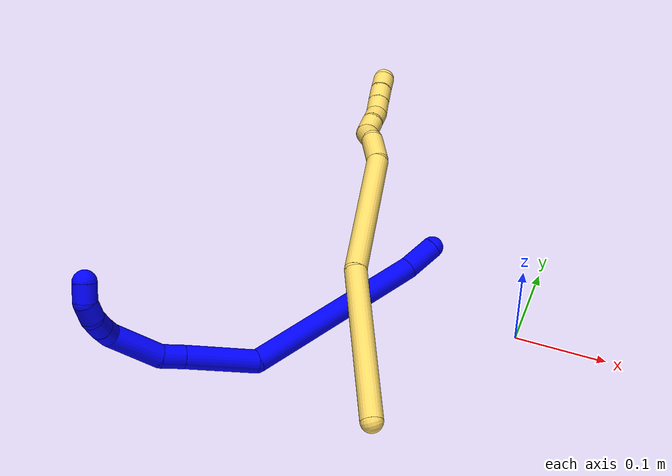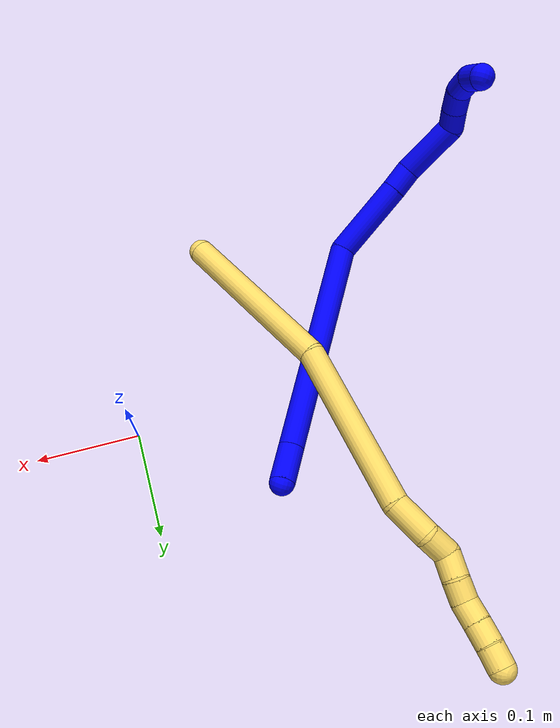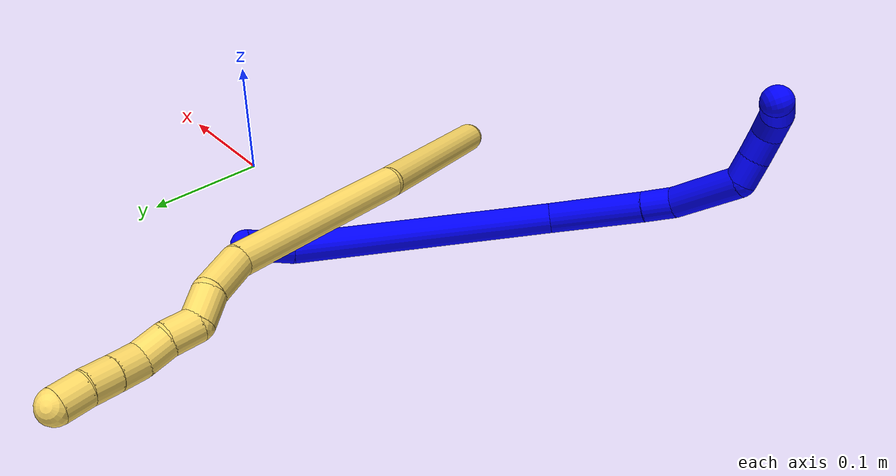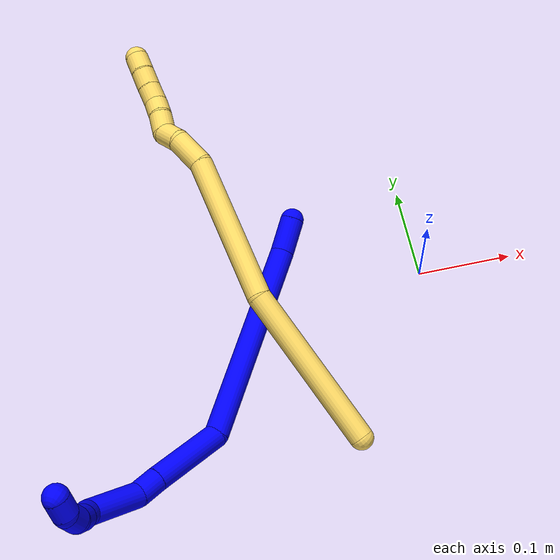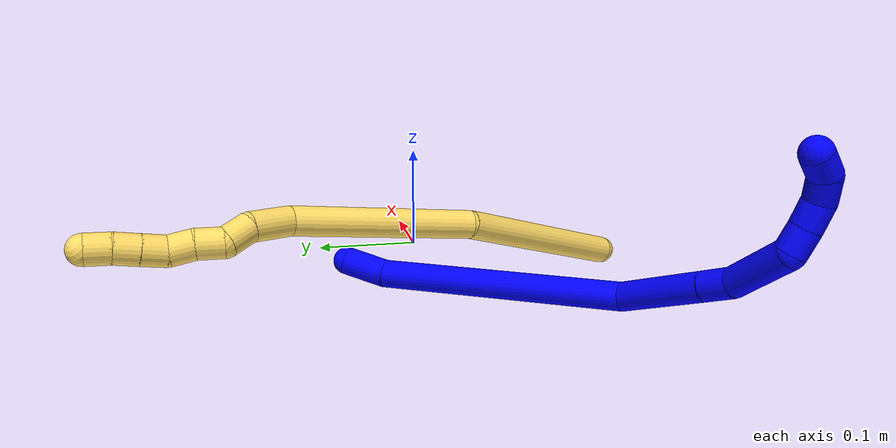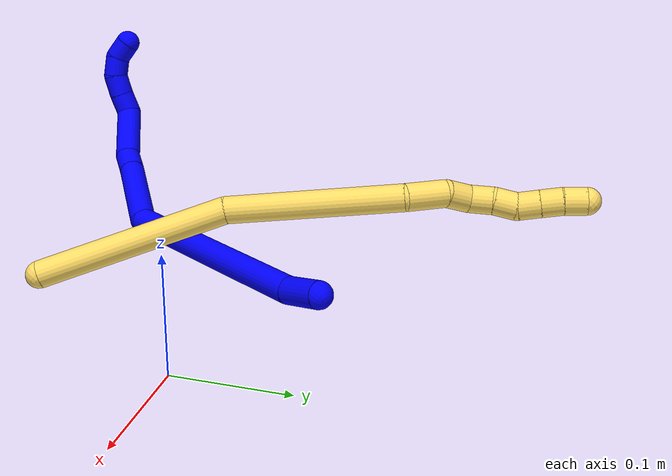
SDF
<sdf version="1.7">
 <world name="default">
  <model name="photoneo_s_sensor">
   <static>1</static>
   <pose>0 0 2 1.57079 1.57079 3.14159</pose>
   <link name="link">
    <inertial><mass>0.1</mass></inertial>
    <sensor name="sensor" type="depth">
     <update_rate>30</update_rate>
     <camera>
      <horizontal_fov>1.22</horizontal_fov>
      <image><width>1920</width><height>1200</height><format>B8G8R8</format></image>
      <clip><near>0.1</near><far>4</far></clip>
      <depth_camera><output>points</output></depth_camera>
     </camera>
     <plugin name="camera_plugin" filename="libgazebo_ros_depth_camera.so">
      <baseline>0.2</baseline>
      <alwaysOn>1</alwaysOn>
      <updateRate>0.0</updateRate>
      <cameraName>camera_ir</cameraName>
      <imageTopicName>/camera/color/image_raw</imageTopicName>
      <cameraInfoTopicName>/camera/color/camera_info</cameraInfoTopicName>
      <depthImageTopicName>/camera/depth/image_raw</depthImageTopicName>
      <depthImageCameraInfoTopicName>/camera/depth/camera_info</depthImageCameraInfoTopicName>
      <pointCloudTopicName>/camera/depth/points</pointCloudTopicName>
      <frameName>fr_optical</frameName>
      <pointCloudCutoff>0.1</pointCloudCutoff>
      <pointCloudCutoffMax>2.0</pointCloudCutoffMax>
      <distortionK1>0</distortionK1>
      <distortionK2>0</distortionK2>
      <distortionK3>0</distortionK3>
      <distortionT1>0</distortionT1>
      <distortionT2>0</distortionT2>
      <CxPrime>0</CxPrime>
      <Cx>0</Cx>
      <Cy>0</Cy>
      <focalLength>0</focalLength>
      <hackBaseline>0</hackBaseline>
     </plugin>
    </sensor>
   </link>
  </model>
  <model name="bin">
   <static>1</static>
   <link name="bottom">
    <collision name="collision-bottom">
     <pose>0 0 -0.01 0 -0 0</pose>
     <geometry><box><size>0.8 0.6 0.02</size></box></geometry>
     <surface>
      <friction><ode><mu>100</mu><mu2>100</mu2></ode></friction>
      <contact><collide_bitmask>65535</collide_bitmask></contact>
     </surface>
    </collision>
   </link>
   <link name="west_wall">
    <collision name="collision-west_wall">
     <pose>-0.41 0 0.1 0 -0 0</pose>
     <geometry><box><size>0.02 0.6 0.2</size></box></geometry>
     <surface>
      <friction><ode><mu>100</mu><mu2>100</mu2></ode></friction>
      <contact><collide_bitmask>65535</collide_bitmask></contact>
     </surface>
    </collision>
   </link>
   <link name="east_wall">
    <collision name="collision-east_wall">
     <pose>0.41 0 0.1 0 -0 0</pose>
     <geometry><box><size>0.02 0.6 0.2</size></box></geometry>
     <surface>
      <friction><ode><mu>100</mu><mu2>100</mu2></ode></friction>
      <contact><collide_bitmask>65535</collide_bitmask></contact>
     </surface>
    </collision>
   </link>
   <link name="south_wall">
    <collision name="collision-south_wall">
     <pose>0 -0.31 0.1 0 -0 0</pose>
     <geometry><box><size>0.8 0.02 0.2</size></box></geometry>
     <surface>
      <friction><ode><mu>100</mu><mu2>100</mu2></ode></friction>
      <contact><collide_bitmask>65535</collide_bitmask></contact>
     </surface>
    </collision>
   </link>
   <link name="north_wall">
    <collision name="collision-north_wall">
     <pose>0 0.31 0.1 0 -0 0</pose>
     <geometry><box><size>0.8 0.02 0.2</size></box></geometry>
     <surface>
      <friction><ode><mu>100</mu><mu2>100</mu2></ode></friction>
      <contact><collide_bitmask>65535</collide_bitmask></contact>
     </surface>
    </collision>
   </link>
  </model>
  <model name="1">
   <static>0</static>
   <link name="1">
    <collision name="collision-cylinder-e_1_1_4">
     <pose>0.002874 -0.009891 0.016234 0.54724 0.150073 0.042192</pose>
     <geometry><cylinder><radius>0.0125</radius><length>0.038452</length></cylinder></geometry>
     <surface>
      <friction><ode><mu>1.16</mu><mu2>1.16</mu2><slip1>0</slip1><slip2>0</slip2></ode></friction>
      <contact><ode><kp>1e+06</kp><kd>1</kd><max_vel>0</max_vel><min_depth>0.001</min_depth></ode></contact>
     </surface>
    </collision>
    <visual name="visual-cylinder-e_1_1_4">
     <pose>0.002874 -0.009891 0.016234 0.54724 0.150073 0.042192</pose>
     <geometry><cylinder><radius>0.0125</radius><length>0.038452</length></cylinder></geometry>
     <material><ambient>0 0 1 1</ambient></material>
    </visual>
    <collision name="collision-cylinder-e_2_4_5">
     <pose>0.017514 -0.05265 0.134063 0.312887 0.109734 0.017326</pose>
     <geometry><cylinder><radius>0.0125</radius><length>0.214852</length></cylinder></geometry>
     <surface>
      <friction><ode><mu>1.16</mu><mu2>1.16</mu2><slip1>0</slip1><slip2>0</slip2></ode></friction>
      <contact><ode><kp>1e+06</kp><kd>1</kd><max_vel>0</max_vel><min_depth>0.001</min_depth></ode></contact>
     </surface>
    </collision>
    <visual name="visual-cylinder-e_2_4_5">
     <pose>0.017514 -0.05265 0.134063 0.312887 0.109734 0.017326</pose>
     <geometry><cylinder><radius>0.0125</radius><length>0.214852</length></cylinder></geometry>
     <material><ambient>0 0 1 1</ambient></material>
    </visual>
    <collision name="collision-cylinder-e_3_5_6">
     <pose>0.013611 -0.086587 0.272502 0.028999 -0.401915 -0.005908</pose>
     <geometry><cylinder><radius>0.0125</radius><length>0.080102</length></cylinder></geometry>
     <surface>
      <friction><ode><mu>1.16</mu><mu2>1.16</mu2><slip1>0</slip1><slip2>0</slip2></ode></friction>
      <contact><ode><kp>1e+06</kp><kd>1</kd><max_vel>0</max_vel><min_depth>0.001</min_depth></ode></contact>
     </surface>
    </collision>
    <visual name="visual-cylinder-e_3_5_6">
     <pose>0.013611 -0.086587 0.272502 0.028999 -0.401915 -0.005908</pose>
     <geometry><cylinder><radius>0.0125</radius><length>0.080102</length></cylinder></geometry>
     <material><ambient>0 0 1 1</ambient></material>
    </visual>
    <collision name="collision-cylinder-e_4_6_7">
     <pose>-0.006402 -0.087997 0.321015 0.029292 -0.356419 -0.005276</pose>
     <geometry><cylinder><radius>0.0125</radius><length>0.024912</length></cylinder></geometry>
     <surface>
      <friction><ode><mu>1.16</mu><mu2>1.16</mu2><slip1>0</slip1><slip2>0</slip2></ode></friction>
      <contact><ode><kp>1e+06</kp><kd>1</kd><max_vel>0</max_vel><min_depth>0.001</min_depth></ode></contact>
     </surface>
    </collision>
    <visual name="visual-cylinder-e_4_6_7">
     <pose>-0.006402 -0.087997 0.321015 0.029292 -0.356419 -0.005276</pose>
     <geometry><cylinder><radius>0.0125</radius><length>0.024912</length></cylinder></geometry>
     <material><ambient>0 0 1 1</ambient></material>
    </visual>
    <collision name="collision-cylinder-e_5_7_8">
     <pose>-0.026018 -0.080623 0.356537 -0.312847 -0.547055 0.088438</pose>
     <geometry><cylinder><radius>0.0125</radius><length>0.058711</length></cylinder></geometry>
     <surface>
      <friction><ode><mu>1.16</mu><mu2>1.16</mu2><slip1>0</slip1><slip2>0</slip2></ode></friction>
      <contact><ode><kp>1e+06</kp><kd>1</kd><max_vel>0</max_vel><min_depth>0.001</min_depth></ode></contact>
     </surface>
    </collision>
    <visual name="visual-cylinder-e_5_7_8">
     <pose>-0.026018 -0.080623 0.356537 -0.312847 -0.547055 0.088438</pose>
     <geometry><cylinder><radius>0.0125</radius><length>0.058711</length></cylinder></geometry>
     <material><ambient>0 0 1 1</ambient></material>
    </visual>
    <collision name="collision-cylinder-e_6_8_9">
     <pose>-0.041152 -0.065227 0.387597 -0.817255 0.012966 -0.005614</pose>
     <geometry><cylinder><radius>0.0125</radius><length>0.021064</length></cylinder></geometry>
     <surface>
      <friction><ode><mu>1.16</mu><mu2>1.16</mu2><slip1>0</slip1><slip2>0</slip2></ode></friction>
      <contact><ode><kp>1e+06</kp><kd>1</kd><max_vel>0</max_vel><min_depth>0.001</min_depth></ode></contact>
     </surface>
    </collision>
    <visual name="visual-cylinder-e_6_8_9">
     <pose>-0.041152 -0.065227 0.387597 -0.817255 0.012966 -0.005614</pose>
     <geometry><cylinder><radius>0.0125</radius><length>0.021064</length></cylinder></geometry>
     <material><ambient>0 0 1 1</ambient></material>
    </visual>
    <collision name="collision-cylinder-e_7_9_10">
     <pose>-0.041622 -0.049275 0.401575 -0.884676 -0.056718 0.02687</pose>
     <geometry><cylinder><radius>0.0125</radius><length>0.021416</length></cylinder></geometry>
     <surface>
      <friction><ode><mu>1.16</mu><mu2>1.16</mu2><slip1>0</slip1><slip2>0</slip2></ode></friction>
      <contact><ode><kp>1e+06</kp><kd>1</kd><max_vel>0</max_vel><min_depth>0.001</min_depth></ode></contact>
     </surface>
    </collision>
    <visual name="visual-cylinder-e_7_9_10">
     <pose>-0.041622 -0.049275 0.401575 -0.884676 -0.056718 0.02687</pose>
     <geometry><cylinder><radius>0.0125</radius><length>0.021416</length></cylinder></geometry>
     <material><ambient>0 0 1 1</ambient></material>
    </visual>
    <collision name="collision-cylinder-e_8_10_11">
     <pose>-0.046356 -0.032637 0.412447 -1.11529 -0.416975 0.262376</pose>
     <geometry><cylinder><radius>0.0125</radius><length>0.02038</length></cylinder></geometry>
     <surface>
      <friction><ode><mu>1.16</mu><mu2>1.16</mu2><slip1>0</slip1><slip2>0</slip2></ode></friction>
      <contact><ode><kp>1e+06</kp><kd>1</kd><max_vel>0</max_vel><min_depth>0.001</min_depth></ode></contact>
     </surface>
    </collision>
    <visual name="visual-cylinder-e_8_10_11">
     <pose>-0.046356 -0.032637 0.412447 -1.11529 -0.416975 0.262376</pose>
     <geometry><cylinder><radius>0.0125</radius><length>0.02038</length></cylinder></geometry>
     <material><ambient>0 0 1 1</ambient></material>
    </visual>
    <collision name="collision-cylinder-e_9_11_2">
     <pose>-0.056637 -0.016357 0.415749 -1.67118 -0.658549 0.722551</pose>
     <geometry><cylinder><radius>0.0125</radius><length>0.020112</length></cylinder></geometry>
     <surface>
      <friction><ode><mu>1.16</mu><mu2>1.16</mu2><slip1>0</slip1><slip2>0</slip2></ode></friction>
      <contact><ode><kp>1e+06</kp><kd>1</kd><max_vel>0</max_vel><min_depth>0.001</min_depth></ode></contact>
     </surface>
    </collision>
    <visual name="visual-cylinder-e_9_11_2">
     <pose>-0.056637 -0.016357 0.415749 -1.67118 -0.658549 0.722551</pose>
     <geometry><cylinder><radius>0.0125</radius><length>0.020112</length></cylinder></geometry>
     <material><ambient>0 0 1 1</ambient></material>
    </visual>
    <collision name="collision-sphere-2">
     <pose>-0.062791 -0.008444 0.414952 0 -0 0</pose>
     <geometry><sphere><radius>0.0125</radius></sphere></geometry>
     <surface>
      <friction><ode><mu>1.16</mu><mu2>1.16</mu2><slip1>0</slip1><slip2>0</slip2></ode></friction>
      <contact><ode><kp>1e+06</kp><kd>1</kd><max_vel>0</max_vel><min_depth>0.001</min_depth></ode></contact>
     </surface>
    </collision>
    <visual name="visual-sphere-2">
     <pose>-0.062791 -0.008444 0.414952 0 -0 0</pose>
     <geometry><sphere><radius>0.0125</radius></sphere></geometry>
     <material><ambient>0 0 1 1</ambient></material>
    </visual>
    <collision name="collision-sphere-11">
     <pose>-0.050483 -0.02427 0.416546 0 -0 0</pose>
     <geometry><sphere><radius>0.0125</radius></sphere></geometry>
     <surface>
      <friction><ode><mu>1.16</mu><mu2>1.16</mu2><slip1>0</slip1><slip2>0</slip2></ode></friction>
      <contact><ode><kp>1e+06</kp><kd>1</kd><max_vel>0</max_vel><min_depth>0.001</min_depth></ode></contact>
     </surface>
    </collision>
    <visual name="visual-sphere-11">
     <pose>-0.050483 -0.02427 0.416546 0 -0 0</pose>
     <geometry><sphere><radius>0.0125</radius></sphere></geometry>
     <material><ambient>0 0 1 1</ambient></material>
    </visual>
    <collision name="collision-sphere-10">
     <pose>-0.042229 -0.041004 0.408348 0 -0 0</pose>
     <geometry><sphere><radius>0.0125</radius></sphere></geometry>
     <surface>
      <friction><ode><mu>1.16</mu><mu2>1.16</mu2><slip1>0</slip1><slip2>0</slip2></ode></friction>
      <contact><ode><kp>1e+06</kp><kd>1</kd><max_vel>0</max_vel><min_depth>0.001</min_depth></ode></contact>
     </surface>
    </collision>
    <visual name="visual-sphere-10">
     <pose>-0.042229 -0.041004 0.408348 0 -0 0</pose>
     <geometry><sphere><radius>0.0125</radius></sphere></geometry>
     <material><ambient>0 0 1 1</ambient></material>
    </visual>
    <collision name="collision-sphere-9">
     <pose>-0.041015 -0.057547 0.394802 0 -0 0</pose>
     <geometry><sphere><radius>0.0125</radius></sphere></geometry>
     <surface>
      <friction><ode><mu>1.16</mu><mu2>1.16</mu2><slip1>0</slip1><slip2>0</slip2></ode></friction>
      <contact><ode><kp>1e+06</kp><kd>1</kd><max_vel>0</max_vel><min_depth>0.001</min_depth></ode></contact>
     </surface>
    </collision>
    <visual name="visual-sphere-9">
     <pose>-0.041015 -0.057547 0.394802 0 -0 0</pose>
     <geometry><sphere><radius>0.0125</radius></sphere></geometry>
     <material><ambient>0 0 1 1</ambient></material>
    </visual>
    <collision name="collision-sphere-4">
     <pose>0.005749 -0.019783 0.032468 0 -0 0</pose>
     <geometry><sphere><radius>0.0125</radius></sphere></geometry>
     <surface>
      <friction><ode><mu>1.16</mu><mu2>1.16</mu2><slip1>0</slip1><slip2>0</slip2></ode></friction>
      <contact><ode><kp>1e+06</kp><kd>1</kd><max_vel>0</max_vel><min_depth>0.001</min_depth></ode></contact>
     </surface>
    </collision>
    <visual name="visual-sphere-4">
     <pose>0.005749 -0.019783 0.032468 0 -0 0</pose>
     <geometry><sphere><radius>0.0125</radius></sphere></geometry>
     <material><ambient>0 0 1 1</ambient></material>
    </visual>
    <collision name="collision-sphere-1">
     <geometry><sphere><radius>0.0125</radius></sphere></geometry>
     <surface>
      <friction><ode><mu>1.16</mu><mu2>1.16</mu2><slip1>0</slip1><slip2>0</slip2></ode></friction>
      <contact><ode><kp>1e+06</kp><kd>1</kd><max_vel>0</max_vel><min_depth>0.001</min_depth></ode></contact>
     </surface>
    </collision>
    <visual name="visual-sphere-1">
     <geometry><sphere><radius>0.0125</radius></sphere></geometry>
     <material><ambient>0 0 1 1</ambient></material>
    </visual>
    <collision name="collision-sphere-8">
     <pose>-0.041288 -0.072907 0.380391 0 -0 0</pose>
     <geometry><sphere><radius>0.0125</radius></sphere></geometry>
     <surface>
      <friction><ode><mu>1.16</mu><mu2>1.16</mu2><slip1>0</slip1><slip2>0</slip2></ode></friction>
      <contact><ode><kp>1e+06</kp><kd>1</kd><max_vel>0</max_vel><min_depth>0.001</min_depth></ode></contact>
     </surface>
    </collision>
    <visual name="visual-sphere-8">
     <pose>-0.041288 -0.072907 0.380391 0 -0 0</pose>
     <geometry><sphere><radius>0.0125</radius></sphere></geometry>
     <material><ambient>0 0 1 1</ambient></material>
    </visual>
    <collision name="collision-sphere-5">
     <pose>0.029278 -0.085518 0.235658 0 -0 0</pose>
     <geometry><sphere><radius>0.0125</radius></sphere></geometry>
     <surface>
      <friction><ode><mu>1.16</mu><mu2>1.16</mu2><slip1>0</slip1><slip2>0</slip2></ode></friction>
      <contact><ode><kp>1e+06</kp><kd>1</kd><max_vel>0</max_vel><min_depth>0.001</min_depth></ode></contact>
     </surface>
    </collision>
    <visual name="visual-sphere-5">
     <pose>0.029278 -0.085518 0.235658 0 -0 0</pose>
     <geometry><sphere><radius>0.0125</radius></sphere></geometry>
     <material><ambient>0 0 1 1</ambient></material>
    </visual>
    <collision name="collision-sphere-6">
     <pose>-0.002056 -0.087655 0.309347 0 -0 0</pose>
     <geometry><sphere><radius>0.0125</radius></sphere></geometry>
     <surface>
      <friction><ode><mu>1.16</mu><mu2>1.16</mu2><slip1>0</slip1><slip2>0</slip2></ode></friction>
      <contact><ode><kp>1e+06</kp><kd>1</kd><max_vel>0</max_vel><min_depth>0.001</min_depth></ode></contact>
     </surface>
    </collision>
    <visual name="visual-sphere-6">
     <pose>-0.002056 -0.087655 0.309347 0 -0 0</pose>
     <geometry><sphere><radius>0.0125</radius></sphere></geometry>
     <material><ambient>0 0 1 1</ambient></material>
    </visual>
    <collision name="collision-sphere-7">
     <pose>-0.010748 -0.088339 0.332683 0 -0 0</pose>
     <geometry><sphere><radius>0.0125</radius></sphere></geometry>
     <surface>
      <friction><ode><mu>1.16</mu><mu2>1.16</mu2><slip1>0</slip1><slip2>0</slip2></ode></friction>
      <contact><ode><kp>1e+06</kp><kd>1</kd><max_vel>0</max_vel><min_depth>0.001</min_depth></ode></contact>
     </surface>
    </collision>
    <visual name="visual-sphere-7">
     <pose>-0.010748 -0.088339 0.332683 0 -0 0</pose>
     <geometry><sphere><radius>0.0125</radius></sphere></geometry>
     <material><ambient>0 0 1 1</ambient></material>
    </visual>
    <inertial>
     <pose>-0.001131 -0.057954 0.227434 0 -0 0</pose>
     <mass>0.5</mass>
     <inertia>
      <ixx>0.000914</ixx>
      <ixy>0</ixy>
      <ixz>0</ixz>
      <iyy>0.000886</iyy>
      <iyz>0</iyz>
      <izz>0.00022</izz>
     </inertia>
    </inertial>
   </link>
   <pose>-0.122588 0.08303 0.020461 1.24 0.157268 -0.625546</pose>
  </model>
  <model name="5">
   <static>0</static>
   <link name="5">
    <collision name="collision-cylinder-e_1_1_4">
     <pose>0.00119 0.042254 -0.076314 -2.63593 0.013637 -0.05277</pose>
     <geometry><cylinder><radius>0.0125</radius><length>0.174478</length></cylinder></geometry>
     <surface>
      <friction><ode><mu>1.16</mu><mu2>1.16</mu2><slip1>0</slip1><slip2>0</slip2></ode></friction>
      <contact><ode><kp>1e+06</kp><kd>1</kd><max_vel>0</max_vel><min_depth>0.001</min_depth></ode></contact>
     </surface>
    </collision>
    <visual name="visual-cylinder-e_1_1_4">
     <pose>0.00119 0.042254 -0.076314 -2.63593 0.013637 -0.05277</pose>
     <geometry><cylinder><radius>0.0125</radius><length>0.174478</length></cylinder></geometry>
     <material><ambient>1 0.858824 0.4 1</ambient></material>
    </visual>
    <collision name="collision-cylinder-e_2_4_5">
     <pose>-0.008442 0.14038 -0.209278 -2.36311 -0.135176 0.327114</pose>
     <geometry><cylinder><radius>0.0125</radius><length>0.160599</length></cylinder></geometry>
     <surface>
      <friction><ode><mu>1.16</mu><mu2>1.16</mu2><slip1>0</slip1><slip2>0</slip2></ode></friction>
      <contact><ode><kp>1e+06</kp><kd>1</kd><max_vel>0</max_vel><min_depth>0.001</min_depth></ode></contact>
     </surface>
    </collision>
    <visual name="visual-cylinder-e_2_4_5">
     <pose>-0.008442 0.14038 -0.209278 -2.36311 -0.135176 0.327114</pose>
     <geometry><cylinder><radius>0.0125</radius><length>0.160599</length></cylinder></geometry>
     <material><ambient>1 0.858824 0.4 1</ambient></material>
    </visual>
    <collision name="collision-cylinder-e_3_5_6">
     <pose>-0.01573 0.20839 -0.279577 -2.41472 0.191105 -0.493723</pose>
     <geometry><cylinder><radius>0.0125</radius><length>0.037208</length></cylinder></geometry>
     <surface>
      <friction><ode><mu>1.16</mu><mu2>1.16</mu2><slip1>0</slip1><slip2>0</slip2></ode></friction>
      <contact><ode><kp>1e+06</kp><kd>1</kd><max_vel>0</max_vel><min_depth>0.001</min_depth></ode></contact>
     </surface>
    </collision>
    <visual name="visual-cylinder-e_3_5_6">
     <pose>-0.01573 0.20839 -0.279577 -2.41472 0.191105 -0.493723</pose>
     <geometry><cylinder><radius>0.0125</radius><length>0.037208</length></cylinder></geometry>
     <material><ambient>1 0.858824 0.4 1</ambient></material>
    </visual>
    <collision name="collision-cylinder-e_4_6_7">
     <pose>-0.007065 0.229799 -0.298842 -2.11546 0.442129 -0.759119</pose>
     <geometry><cylinder><radius>0.0125</radius><length>0.023986</length></cylinder></geometry>
     <surface>
      <friction><ode><mu>1.16</mu><mu2>1.16</mu2><slip1>0</slip1><slip2>0</slip2></ode></friction>
      <contact><ode><kp>1e+06</kp><kd>1</kd><max_vel>0</max_vel><min_depth>0.001</min_depth></ode></contact>
     </surface>
    </collision>
    <visual name="visual-cylinder-e_4_6_7">
     <pose>-0.007065 0.229799 -0.298842 -2.11546 0.442129 -0.759119</pose>
     <geometry><cylinder><radius>0.0125</radius><length>0.023986</length></cylinder></geometry>
     <material><ambient>1 0.858824 0.4 1</ambient></material>
    </visual>
    <collision name="collision-cylinder-e_5_7_8">
     <pose>-0.004572 0.247963 -0.310881 -2.19629 -0.236082 0.45582</pose>
     <geometry><cylinder><radius>0.0125</radius><length>0.022565</length></cylinder></geometry>
     <surface>
      <friction><ode><mu>1.16</mu><mu2>1.16</mu2><slip1>0</slip1><slip2>0</slip2></ode></friction>
      <contact><ode><kp>1e+06</kp><kd>1</kd><max_vel>0</max_vel><min_depth>0.001</min_depth></ode></contact>
     </surface>
    </collision>
    <visual name="visual-cylinder-e_5_7_8">
     <pose>-0.004572 0.247963 -0.310881 -2.19629 -0.236082 0.45582</pose>
     <geometry><cylinder><radius>0.0125</radius><length>0.022565</length></cylinder></geometry>
     <material><ambient>1 0.858824 0.4 1</ambient></material>
    </visual>
    <collision name="collision-cylinder-e_6_8_9">
     <pose>-0.008067 0.265946 -0.322 -2.04769 -0.083384 0.136804</pose>
     <geometry><cylinder><radius>0.0125</radius><length>0.020534</length></cylinder></geometry>
     <surface>
      <friction><ode><mu>1.16</mu><mu2>1.16</mu2><slip1>0</slip1><slip2>0</slip2></ode></friction>
      <contact><ode><kp>1e+06</kp><kd>1</kd><max_vel>0</max_vel><min_depth>0.001</min_depth></ode></contact>
     </surface>
    </collision>
    <visual name="visual-cylinder-e_6_8_9">
     <pose>-0.008067 0.265946 -0.322 -2.04769 -0.083384 0.136804</pose>
     <geometry><cylinder><radius>0.0125</radius><length>0.020534</length></cylinder></geometry>
     <material><ambient>1 0.858824 0.4 1</ambient></material>
    </visual>
    <collision name="collision-cylinder-e_7_9_10">
     <pose>-0.010331 0.281728 -0.334219 -2.41456 -0.139028 0.362041</pose>
     <geometry><cylinder><radius>0.0125</radius><length>0.020333</length></cylinder></geometry>
     <surface>
      <friction><ode><mu>1.16</mu><mu2>1.16</mu2><slip1>0</slip1><slip2>0</slip2></ode></friction>
      <contact><ode><kp>1e+06</kp><kd>1</kd><max_vel>0</max_vel><min_depth>0.001</min_depth></ode></contact>
     </surface>
    </collision>
    <visual name="visual-cylinder-e_7_9_10">
     <pose>-0.010331 0.281728 -0.334219 -2.41456 -0.139028 0.362041</pose>
     <geometry><cylinder><radius>0.0125</radius><length>0.020333</length></cylinder></geometry>
     <material><ambient>1 0.858824 0.4 1</ambient></material>
    </visual>
    <collision name="collision-cylinder-e_8_10_11">
     <pose>-0.013369 0.295096 -0.349081 -2.4034 -0.162777 0.415648</pose>
     <geometry><cylinder><radius>0.0125</radius><length>0.020109</length></cylinder></geometry>
     <surface>
      <friction><ode><mu>1.16</mu><mu2>1.16</mu2><slip1>0</slip1><slip2>0</slip2></ode></friction>
      <contact><ode><kp>1e+06</kp><kd>1</kd><max_vel>0</max_vel><min_depth>0.001</min_depth></ode></contact>
     </surface>
    </collision>
    <visual name="visual-cylinder-e_8_10_11">
     <pose>-0.013369 0.295096 -0.349081 -2.4034 -0.162777 0.415648</pose>
     <geometry><cylinder><radius>0.0125</radius><length>0.020109</length></cylinder></geometry>
     <material><ambient>1 0.858824 0.4 1</ambient></material>
    </visual>
    <collision name="collision-cylinder-e_9_11_2">
     <pose>-0.016289 0.309253 -0.363074 -2.29783 -0.128256 0.284219</pose>
     <geometry><cylinder><radius>0.0125</radius><length>0.020188</length></cylinder></geometry>
     <surface>
      <friction><ode><mu>1.16</mu><mu2>1.16</mu2><slip1>0</slip1><slip2>0</slip2></ode></friction>
      <contact><ode><kp>1e+06</kp><kd>1</kd><max_vel>0</max_vel><min_depth>0.001</min_depth></ode></contact>
     </surface>
    </collision>
    <visual name="visual-cylinder-e_9_11_2">
     <pose>-0.016289 0.309253 -0.363074 -2.29783 -0.128256 0.284219</pose>
     <geometry><cylinder><radius>0.0125</radius><length>0.020188</length></cylinder></geometry>
     <material><ambient>1 0.858824 0.4 1</ambient></material>
    </visual>
    <collision name="collision-sphere-2">
     <pose>-0.01758 0.316733 -0.369727 0 -0 0</pose>
     <geometry><sphere><radius>0.0125</radius></sphere></geometry>
     <surface>
      <friction><ode><mu>1.16</mu><mu2>1.16</mu2><slip1>0</slip1><slip2>0</slip2></ode></friction>
      <contact><ode><kp>1e+06</kp><kd>1</kd><max_vel>0</max_vel><min_depth>0.001</min_depth></ode></contact>
     </surface>
    </collision>
    <visual name="visual-sphere-2">
     <pose>-0.01758 0.316733 -0.369727 0 -0 0</pose>
     <geometry><sphere><radius>0.0125</radius></sphere></geometry>
     <material><ambient>1 0.858824 0.4 1</ambient></material>
    </visual>
    <collision name="collision-sphere-11">
     <pose>-0.014998 0.301773 -0.35642 0 -0 0</pose>
     <geometry><sphere><radius>0.0125</radius></sphere></geometry>
     <surface>
      <friction><ode><mu>1.16</mu><mu2>1.16</mu2><slip1>0</slip1><slip2>0</slip2></ode></friction>
      <contact><ode><kp>1e+06</kp><kd>1</kd><max_vel>0</max_vel><min_depth>0.001</min_depth></ode></contact>
     </surface>
    </collision>
    <visual name="visual-sphere-11">
     <pose>-0.014998 0.301773 -0.35642 0 -0 0</pose>
     <geometry><sphere><radius>0.0125</radius></sphere></geometry>
     <material><ambient>1 0.858824 0.4 1</ambient></material>
    </visual>
    <collision name="collision-sphere-10">
     <pose>-0.011739 0.28842 -0.341742 0 -0 0</pose>
     <geometry><sphere><radius>0.0125</radius></sphere></geometry>
     <surface>
      <friction><ode><mu>1.16</mu><mu2>1.16</mu2><slip1>0</slip1><slip2>0</slip2></ode></friction>
      <contact><ode><kp>1e+06</kp><kd>1</kd><max_vel>0</max_vel><min_depth>0.001</min_depth></ode></contact>
     </surface>
    </collision>
    <visual name="visual-sphere-10">
     <pose>-0.011739 0.28842 -0.341742 0 -0 0</pose>
     <geometry><sphere><radius>0.0125</radius></sphere></geometry>
     <material><ambient>1 0.858824 0.4 1</ambient></material>
    </visual>
    <collision name="collision-sphere-9">
     <pose>-0.008922 0.275036 -0.326697 0 -0 0</pose>
     <geometry><sphere><radius>0.0125</radius></sphere></geometry>
     <surface>
      <friction><ode><mu>1.16</mu><mu2>1.16</mu2><slip1>0</slip1><slip2>0</slip2></ode></friction>
      <contact><ode><kp>1e+06</kp><kd>1</kd><max_vel>0</max_vel><min_depth>0.001</min_depth></ode></contact>
     </surface>
    </collision>
    <visual name="visual-sphere-9">
     <pose>-0.008922 0.275036 -0.326697 0 -0 0</pose>
     <geometry><sphere><radius>0.0125</radius></sphere></geometry>
     <material><ambient>1 0.858824 0.4 1</ambient></material>
    </visual>
    <collision name="collision-sphere-4">
     <pose>0.002379 0.084507 -0.152628 0 -0 0</pose>
     <geometry><sphere><radius>0.0125</radius></sphere></geometry>
     <surface>
      <friction><ode><mu>1.16</mu><mu2>1.16</mu2><slip1>0</slip1><slip2>0</slip2></ode></friction>
      <contact><ode><kp>1e+06</kp><kd>1</kd><max_vel>0</max_vel><min_depth>0.001</min_depth></ode></contact>
     </surface>
    </collision>
    <visual name="visual-sphere-4">
     <pose>0.002379 0.084507 -0.152628 0 -0 0</pose>
     <geometry><sphere><radius>0.0125</radius></sphere></geometry>
     <material><ambient>1 0.858824 0.4 1</ambient></material>
    </visual>
    <collision name="collision-sphere-1">
     <geometry><sphere><radius>0.0125</radius></sphere></geometry>
     <surface>
      <friction><ode><mu>1.16</mu><mu2>1.16</mu2><slip1>0</slip1><slip2>0</slip2></ode></friction>
      <contact><ode><kp>1e+06</kp><kd>1</kd><max_vel>0</max_vel><min_depth>0.001</min_depth></ode></contact>
     </surface>
    </collision>
    <visual name="visual-sphere-1">
     <geometry><sphere><radius>0.0125</radius></sphere></geometry>
     <material><ambient>1 0.858824 0.4 1</ambient></material>
    </visual>
    <collision name="collision-sphere-8">
     <pose>-0.007211 0.256856 -0.317304 0 -0 0</pose>
     <geometry><sphere><radius>0.0125</radius></sphere></geometry>
     <surface>
      <friction><ode><mu>1.16</mu><mu2>1.16</mu2><slip1>0</slip1><slip2>0</slip2></ode></friction>
      <contact><ode><kp>1e+06</kp><kd>1</kd><max_vel>0</max_vel><min_depth>0.001</min_depth></ode></contact>
     </surface>
    </collision>
    <visual name="visual-sphere-8">
     <pose>-0.007211 0.256856 -0.317304 0 -0 0</pose>
     <geometry><sphere><radius>0.0125</radius></sphere></geometry>
     <material><ambient>1 0.858824 0.4 1</ambient></material>
    </visual>
    <collision name="collision-sphere-5">
     <pose>-0.019264 0.196252 -0.265928 0 -0 0</pose>
     <geometry><sphere><radius>0.0125</radius></sphere></geometry>
     <surface>
      <friction><ode><mu>1.16</mu><mu2>1.16</mu2><slip1>0</slip1><slip2>0</slip2></ode></friction>
      <contact><ode><kp>1e+06</kp><kd>1</kd><max_vel>0</max_vel><min_depth>0.001</min_depth></ode></contact>
     </surface>
    </collision>
    <visual name="visual-sphere-5">
     <pose>-0.019264 0.196252 -0.265928 0 -0 0</pose>
     <geometry><sphere><radius>0.0125</radius></sphere></geometry>
     <material><ambient>1 0.858824 0.4 1</ambient></material>
    </visual>
    <collision name="collision-sphere-6">
     <pose>-0.012196 0.220528 -0.293226 0 -0 0</pose>
     <geometry><sphere><radius>0.0125</radius></sphere></geometry>
     <surface>
      <friction><ode><mu>1.16</mu><mu2>1.16</mu2><slip1>0</slip1><slip2>0</slip2></ode></friction>
      <contact><ode><kp>1e+06</kp><kd>1</kd><max_vel>0</max_vel><min_depth>0.001</min_depth></ode></contact>
     </surface>
    </collision>
    <visual name="visual-sphere-6">
     <pose>-0.012196 0.220528 -0.293226 0 -0 0</pose>
     <geometry><sphere><radius>0.0125</radius></sphere></geometry>
     <material><ambient>1 0.858824 0.4 1</ambient></material>
    </visual>
    <collision name="collision-sphere-7">
     <pose>-0.001934 0.239071 -0.304459 0 -0 0</pose>
     <geometry><sphere><radius>0.0125</radius></sphere></geometry>
     <surface>
      <friction><ode><mu>1.16</mu><mu2>1.16</mu2><slip1>0</slip1><slip2>0</slip2></ode></friction>
      <contact><ode><kp>1e+06</kp><kd>1</kd><max_vel>0</max_vel><min_depth>0.001</min_depth></ode></contact>
     </surface>
    </collision>
    <visual name="visual-sphere-7">
     <pose>-0.001934 0.239071 -0.304459 0 -0 0</pose>
     <geometry><sphere><radius>0.0125</radius></sphere></geometry>
     <material><ambient>1 0.858824 0.4 1</ambient></material>
    </visual>
    <inertial>
     <pose>-0.005959 0.14429 -0.198535 0 -0 0</pose>
     <mass>0.5</mass>
     <inertia>
      <ixx>0.000877</ixx>
      <ixy>0</ixy>
      <ixz>0</ixz>
      <iyy>-0.000515</iyy>
      <iyz>0</iyz>
      <izz>-0.000462</izz>
     </inertia>
    </inertial>
   </link>
   <pose>-0.105179 -0.170635 0.012293 -2.41262 0.439385 -2.85232</pose>
  </model>
 </world>
</sdf>
